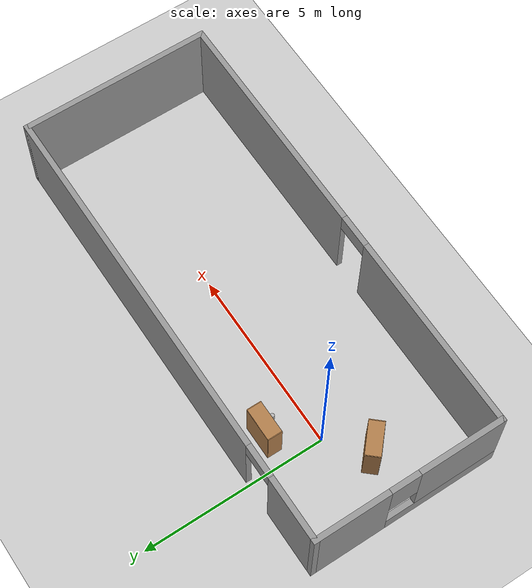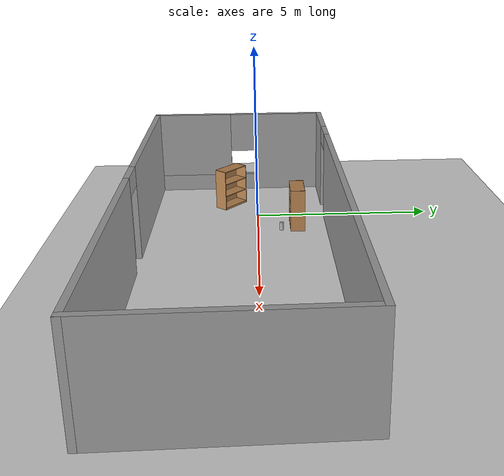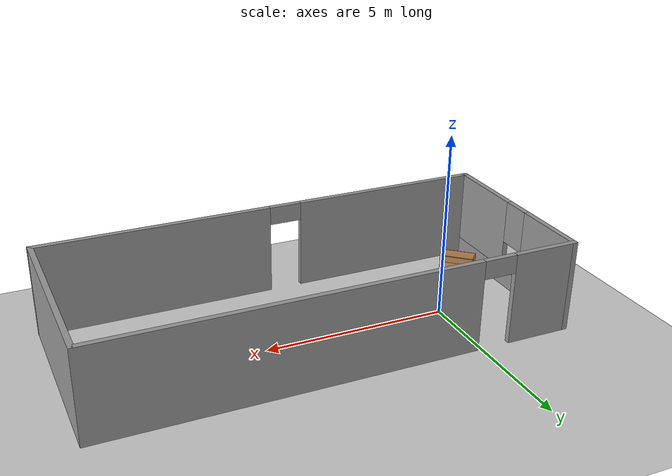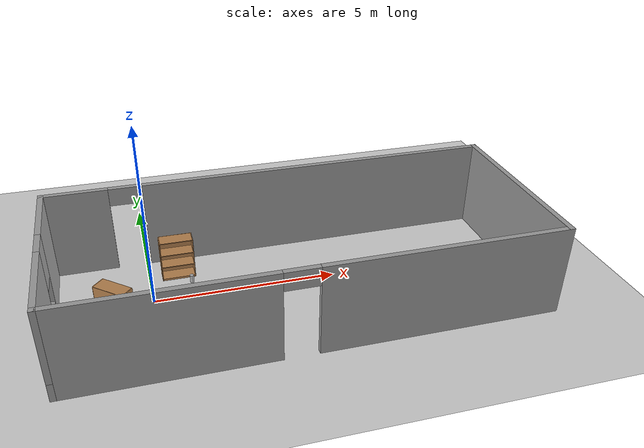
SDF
<sdf version="1.7">
 <world name="default">
  <light name="sun" type="directional">
   <pose>0 0 10 0 -0 0</pose>
   <diffuse>0.8 0.8 0.8 1</diffuse>
   <specular>0.2 0.2 0.2 1</specular>
   <attenuation>
    <range>1000</range>
    <constant>0.9</constant>
    <linear>0.01</linear>
    <quadratic>0.001</quadratic>
   </attenuation>
   <direction>-0.5 0.1 -0.9</direction>
   <spot><inner_angle>0</inner_angle><outer_angle>0</outer_angle><falloff>0</falloff></spot>
  </light>
  <model name="ground_plane">
   <static>1</static>
   <link name="link">
    <collision name="collision">
     <geometry><plane><normal>0 0 1</normal><size>100 100</size></plane></geometry>
     <surface>
      <contact><collide_bitmask>65535</collide_bitmask></contact>
      <friction><ode><mu>100</mu><mu2>50</mu2></ode></friction>
     </surface>
    </collision>
    <visual name="visual">
     <cast_shadows>0</cast_shadows>
     <geometry><plane><normal>0 0 1</normal><size>100 100</size></plane></geometry>
     <material>
      <script><uri>file://media/materials/scripts/gazebo.material</uri><name>Gazebo/Grey</name></script>
     </material>
    </visual>
   </link>
  </model>
  <gravity>0 0 -9.8</gravity>
  <magnetic_field>6e-06 2.3e-05 -4.2e-05</magnetic_field>
  <atmosphere type="adiabatic"/>
  <physics type="ode">
   <max_step_size>0.001</max_step_size>
   <real_time_factor>1</real_time_factor>
   <real_time_update_rate>1000</real_time_update_rate>
  </physics>
  <scene><ambient>0.4 0.4 0.4 1</ambient><background>0.7 0.7 0.7 1</background><shadows>1</shadows></scene>
  <audio><device>default</device></audio>
  <spherical_coordinates>
   <surface_model>EARTH_WGS84</surface_model>
   <latitude_deg>0</latitude_deg>
   <longitude_deg>0</longitude_deg>
   <elevation>0</elevation>
   <heading_deg>0</heading_deg>
  </spherical_coordinates>
  <model name="world_model">
   <pose>3.76877 -0.531603 0 0 -0 0</pose>
   <link name="Wall_3">
    <pose>-6.3 0 0 0 -0 -1.5708</pose>
    <visual name="Wall_3_Visual_0">
     <pose>-1.57953 0 1.25 0 -0 0</pose>
     <geometry><box><size>2.09095 0.15 2.5</size></box></geometry>
     <material>
      <script><uri>file://media/materials/scripts/gazebo.material</uri><name>Gazebo/Grey</name></script>
      <ambient>1 1 1 1</ambient>
     </material>
     <meta><layer>0</layer></meta>
    </visual>
    <collision name="Wall_3_Collision_0">
     <geometry><box><size>2.09095 0.15 2.5</size></box></geometry>
     <pose>-1.57953 0 1.25 0 -0 0</pose>
    </collision>
    <visual name="Wall_3_Visual_1">
     <pose>1.04547 0 0.25 0 -0 0</pose>
     <geometry><box><size>3.15905 0.15 0.5</size></box></geometry>
     <material>
      <script><uri>file://media/materials/scripts/gazebo.material</uri><name>Gazebo/Grey</name></script>
      <ambient>1 1 1 1</ambient>
     </material>
     <meta><layer>0</layer></meta>
    </visual>
    <collision name="Wall_3_Collision_1">
     <geometry><box><size>3.15905 0.15 0.5</size></box></geometry>
     <pose>1.04547 0 0.25 0 -0 0</pose>
    </collision>
    <visual name="Wall_3_Visual_2">
     <pose>1.44547 0 1.5 0 -0 0</pose>
     <geometry><box><size>2.35906 0.15 2</size></box></geometry>
     <material>
      <script><uri>file://media/materials/scripts/gazebo.material</uri><name>Gazebo/Grey</name></script>
      <ambient>1 1 1 1</ambient>
     </material>
     <meta><layer>0</layer></meta>
    </visual>
    <collision name="Wall_3_Collision_2">
     <geometry><box><size>2.35906 0.15 2</size></box></geometry>
     <pose>1.44547 0 1.5 0 -0 0</pose>
    </collision>
    <visual name="Wall_3_Visual_3">
     <pose>-0.134055 0 1.9 0 -0 0</pose>
     <geometry><box><size>0.8 0.15 1.2</size></box></geometry>
     <material>
      <script><uri>file://media/materials/scripts/gazebo.material</uri><name>Gazebo/Grey</name></script>
      <ambient>1 1 1 1</ambient>
     </material>
     <meta><layer>0</layer></meta>
    </visual>
    <collision name="Wall_3_Collision_3">
     <geometry><box><size>0.8 0.15 1.2</size></box></geometry>
     <pose>-0.134055 0 1.9 0 -0 0</pose>
    </collision>
   </link>
   <link name="Wall_5">
    <pose>-0 2.55 0 0 -0 0</pose>
    <visual name="Wall_5_Visual_0">
     <pose>-5.4702 0 1.25 0 -0 0</pose>
     <geometry><box><size>1.8096 0.15 2.5</size></box></geometry>
     <material>
      <script><uri>file://media/materials/scripts/gazebo.material</uri><name>Gazebo/Grey</name></script>
      <ambient>1 1 1 1</ambient>
     </material>
     <meta><layer>0</layer></meta>
    </visual>
    <collision name="Wall_5_Collision_0">
     <geometry><box><size>1.8096 0.15 2.5</size></box></geometry>
     <pose>-5.4702 0 1.25 0 -0 0</pose>
    </collision>
    <visual name="Wall_5_Visual_1">
     <pose>1.3548 0 1.25 0 -0 0</pose>
     <geometry><box><size>10.0404 0.15 2.5</size></box></geometry>
     <material>
      <script><uri>file://media/materials/scripts/gazebo.material</uri><name>Gazebo/Grey</name></script>
      <ambient>1 1 1 1</ambient>
     </material>
     <meta><layer>0</layer></meta>
    </visual>
    <collision name="Wall_5_Collision_1">
     <geometry><box><size>10.0404 0.15 2.5</size></box></geometry>
     <pose>1.3548 0 1.25 0 -0 0</pose>
    </collision>
    <visual name="Wall_5_Visual_2">
     <pose>-4.1154 0 2.25 0 -0 0</pose>
     <geometry><box><size>0.9 0.15 0.5</size></box></geometry>
     <material>
      <script><uri>file://media/materials/scripts/gazebo.material</uri><name>Gazebo/Grey</name></script>
      <ambient>1 1 1 1</ambient>
     </material>
     <meta><layer>0</layer></meta>
    </visual>
    <collision name="Wall_5_Collision_2">
     <geometry><box><size>0.9 0.15 0.5</size></box></geometry>
     <pose>-4.1154 0 2.25 0 -0 0</pose>
    </collision>
   </link>
   <link name="Wall_6">
    <collision name="Wall_6_Collision">
     <geometry><box><size>5.25 0.15 2.5</size></box></geometry>
     <pose>0 0 1.25 0 -0 0</pose>
    </collision>
    <visual name="Wall_6_Visual">
     <pose>0 0 1.25 0 -0 0</pose>
     <geometry><box><size>5.25 0.15 2.5</size></box></geometry>
     <material>
      <script><uri>file://media/materials/scripts/gazebo.material</uri><name>Gazebo/Grey</name></script>
      <ambient>1 1 1 1</ambient>
     </material>
     <meta><layer>0</layer></meta>
    </visual>
    <pose>6.3 0 0 0 -0 -1.5708</pose>
   </link>
   <link name="Wall_7">
    <pose>-0 -2.55 0 0 -0 3.14159</pose>
    <visual name="Wall_7_Visual_0">
     <pose>-3.14159 0 1.25 0 -0 0</pose>
     <geometry><box><size>6.46682 0.15 2.5</size></box></geometry>
     <material>
      <script><uri>file://media/materials/scripts/gazebo.material</uri><name>Gazebo/Grey</name></script>
      <ambient>1 1 1 1</ambient>
     </material>
     <meta><layer>0</layer></meta>
    </visual>
    <collision name="Wall_7_Collision_0">
     <geometry><box><size>6.46682 0.15 2.5</size></box></geometry>
     <pose>-3.14159 0 1.25 0 -0 0</pose>
    </collision>
    <visual name="Wall_7_Visual_1">
     <pose>3.68341 0 1.25 0 -0 0</pose>
     <geometry><box><size>5.38318 0.15 2.5</size></box></geometry>
     <material>
      <script><uri>file://media/materials/scripts/gazebo.material</uri><name>Gazebo/Grey</name></script>
      <ambient>1 1 1 1</ambient>
     </material>
     <meta><layer>0</layer></meta>
    </visual>
    <collision name="Wall_7_Collision_1">
     <geometry><box><size>5.38318 0.15 2.5</size></box></geometry>
     <pose>3.68341 0 1.25 0 -0 0</pose>
    </collision>
    <visual name="Wall_7_Visual_2">
     <pose>0.541823 0 2.25 0 -0 0</pose>
     <geometry><box><size>0.9 0.15 0.5</size></box></geometry>
     <material>
      <script><uri>file://media/materials/scripts/gazebo.material</uri><name>Gazebo/Grey</name></script>
      <ambient>1 1 1 1</ambient>
     </material>
     <meta><layer>0</layer></meta>
    </visual>
    <collision name="Wall_7_Collision_2">
     <geometry><box><size>0.9 0.15 0.5</size></box></geometry>
     <pose>0.541823 0 2.25 0 -0 0</pose>
    </collision>
   </link>
   <static>1</static>
  </model>
  <model name="bookshelf">
   <static>1</static>
   <link name="link">
    <inertial><mass>1</mass></inertial>
    <collision name="back">
     <pose>0 0.005 0.6 0 -0 0</pose>
     <geometry><box><size>0.9 0.01 1.2</size></box></geometry>
    </collision>
    <visual name="visual1">
     <pose>0 0.005 0.6 0 -0 0</pose>
     <geometry><box><size>0.9 0.01 1.2</size></box></geometry>
     <material>
      <script><uri>file://media/materials/scripts/gazebo.material</uri><name>Gazebo/Wood</name></script>
     </material>
    </visual>
    <collision name="left_side">
     <pose>0.45 -0.195 0.6 0 -0 0</pose>
     <geometry><box><size>0.02 0.4 1.2</size></box></geometry>
    </collision>
    <visual name="visual2">
     <pose>0.45 -0.195 0.6 0 -0 0</pose>
     <geometry><box><size>0.02 0.4 1.2</size></box></geometry>
     <material>
      <script><uri>file://media/materials/scripts/gazebo.material</uri><name>Gazebo/Wood</name></script>
     </material>
    </visual>
    <collision name="right_side">
     <pose>-0.45 -0.195 0.6 0 -0 0</pose>
     <geometry><box><size>0.02 0.4 1.2</size></box></geometry>
    </collision>
    <visual name="visual3">
     <pose>-0.45 -0.195 0.6 0 -0 0</pose>
     <geometry><box><size>0.02 0.4 1.2</size></box></geometry>
     <material>
      <script><uri>file://media/materials/scripts/gazebo.material</uri><name>Gazebo/Wood</name></script>
     </material>
    </visual>
    <collision name="bottom">
     <pose>0 -0.195 0.03 0 -0 0</pose>
     <geometry><box><size>0.88 0.4 0.06</size></box></geometry>
    </collision>
    <visual name="visual4">
     <pose>0 -0.195 0.03 0 -0 0</pose>
     <geometry><box><size>0.88 0.4 0.06</size></box></geometry>
     <material>
      <script><uri>file://media/materials/scripts/gazebo.material</uri><name>Gazebo/Wood</name></script>
     </material>
    </visual>
    <collision name="top">
     <pose>0 -0.195 1.19 0 -0 0</pose>
     <geometry><box><size>0.88 0.4 0.02</size></box></geometry>
    </collision>
    <visual name="visual5">
     <pose>0 -0.195 1.19 0 -0 0</pose>
     <geometry><box><size>0.88 0.4 0.02</size></box></geometry>
     <material>
      <script><uri>file://media/materials/scripts/gazebo.material</uri><name>Gazebo/Wood</name></script>
     </material>
    </visual>
    <collision name="low_shelf">
     <pose>0 -0.195 0.43 0 -0 0</pose>
     <geometry><box><size>0.88 0.4 0.02</size></box></geometry>
    </collision>
    <visual name="visual6">
     <pose>0 -0.195 0.43 0 -0 0</pose>
     <geometry><box><size>0.88 0.4 0.02</size></box></geometry>
     <material>
      <script><uri>file://media/materials/scripts/gazebo.material</uri><name>Gazebo/Wood</name></script>
     </material>
    </visual>
    <collision name="high_shelf">
     <pose>0 -0.195 0.8 0 -0 0</pose>
     <geometry><box><size>0.88 0.4 0.02</size></box></geometry>
    </collision>
    <visual name="visual7">
     <pose>0 -0.195 0.8 0 -0 0</pose>
     <geometry><box><size>0.88 0.4 0.02</size></box></geometry>
     <material>
      <script><uri>file://media/materials/scripts/gazebo.material</uri><name>Gazebo/Wood</name></script>
     </material>
    </visual>
   </link>
   <pose>0.79646 1.31575 0 0 -0 0</pose>
  </model>
  <model name="bookshelf_0">
   <static>1</static>
   <link name="link">
    <inertial><mass>1</mass></inertial>
    <collision name="back">
     <pose>0 0.005 0.6 0 -0 0</pose>
     <geometry><box><size>0.9 0.01 1.2</size></box></geometry>
    </collision>
    <visual name="visual1">
     <pose>0 0.005 0.6 0 -0 0</pose>
     <geometry><box><size>0.9 0.01 1.2</size></box></geometry>
     <material>
      <script><uri>file://media/materials/scripts/gazebo.material</uri><name>Gazebo/Wood</name></script>
     </material>
    </visual>
    <collision name="left_side">
     <pose>0.45 -0.195 0.6 0 -0 0</pose>
     <geometry><box><size>0.02 0.4 1.2</size></box></geometry>
    </collision>
    <visual name="visual2">
     <pose>0.45 -0.195 0.6 0 -0 0</pose>
     <geometry><box><size>0.02 0.4 1.2</size></box></geometry>
     <material>
      <script><uri>file://media/materials/scripts/gazebo.material</uri><name>Gazebo/Wood</name></script>
     </material>
    </visual>
    <collision name="right_side">
     <pose>-0.45 -0.195 0.6 0 -0 0</pose>
     <geometry><box><size>0.02 0.4 1.2</size></box></geometry>
    </collision>
    <visual name="visual3">
     <pose>-0.45 -0.195 0.6 0 -0 0</pose>
     <geometry><box><size>0.02 0.4 1.2</size></box></geometry>
     <material>
      <script><uri>file://media/materials/scripts/gazebo.material</uri><name>Gazebo/Wood</name></script>
     </material>
    </visual>
    <collision name="bottom">
     <pose>0 -0.195 0.03 0 -0 0</pose>
     <geometry><box><size>0.88 0.4 0.06</size></box></geometry>
    </collision>
    <visual name="visual4">
     <pose>0 -0.195 0.03 0 -0 0</pose>
     <geometry><box><size>0.88 0.4 0.06</size></box></geometry>
     <material>
      <script><uri>file://media/materials/scripts/gazebo.material</uri><name>Gazebo/Wood</name></script>
     </material>
    </visual>
    <collision name="top">
     <pose>0 -0.195 1.19 0 -0 0</pose>
     <geometry><box><size>0.88 0.4 0.02</size></box></geometry>
    </collision>
    <visual name="visual5">
     <pose>0 -0.195 1.19 0 -0 0</pose>
     <geometry><box><size>0.88 0.4 0.02</size></box></geometry>
     <material>
      <script><uri>file://media/materials/scripts/gazebo.material</uri><name>Gazebo/Wood</name></script>
     </material>
    </visual>
    <collision name="low_shelf">
     <pose>0 -0.195 0.43 0 -0 0</pose>
     <geometry><box><size>0.88 0.4 0.02</size></box></geometry>
    </collision>
    <visual name="visual6">
     <pose>0 -0.195 0.43 0 -0 0</pose>
     <geometry><box><size>0.88 0.4 0.02</size></box></geometry>
     <material>
      <script><uri>file://media/materials/scripts/gazebo.material</uri><name>Gazebo/Wood</name></script>
     </material>
    </visual>
    <collision name="high_shelf">
     <pose>0 -0.195 0.8 0 -0 0</pose>
     <geometry><box><size>0.88 0.4 0.02</size></box></geometry>
    </collision>
    <visual name="visual7">
     <pose>0 -0.195 0.8 0 -0 0</pose>
     <geometry><box><size>0.88 0.4 0.02</size></box></geometry>
     <material>
      <script><uri>file://media/materials/scripts/gazebo.material</uri><name>Gazebo/Wood</name></script>
     </material>
    </visual>
   </link>
   <pose>-1.11084 -0.933578 0 0 -0 2.414</pose>
  </model>
  <model name="beer">
   <link name="link">
    <pose>0 0 0.115 0 -0 0</pose>
    <inertial>
     <mass>0.39</mass>
     <inertia><ixx>0.00058</ixx><ixy>0</ixy><ixz>0</ixz><iyy>0.00058</iyy><iyz>0</iyz><izz>0.00019</izz></inertia>
    </inertial>
    <collision name="collision">
     <geometry><cylinder><radius>0.055</radius><length>0.23</length></cylinder></geometry>
    </collision>
    <visual name="visual">
     <geometry><cylinder><radius>0.055</radius><length>0.23</length></cylinder></geometry>
     <material>
      <script>
       <uri>model://beer/materials/scripts</uri>
       <uri>model://beer/materials/textures</uri>
       <name>Beer/Diffuse</name>
      </script>
     </material>
    </visual>
   </link>
   <pose>1.11599 0.673852 -7e-06 -1e-06 0 -3e-06</pose>
  </model>
 </world>
</sdf>
